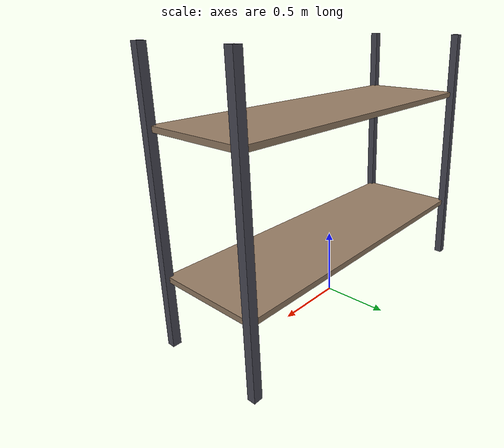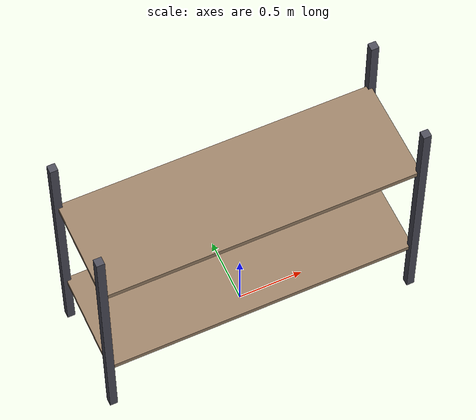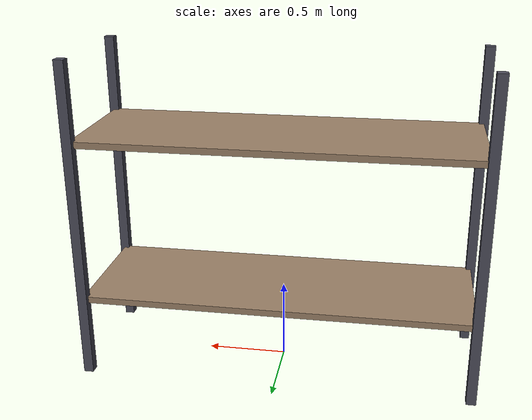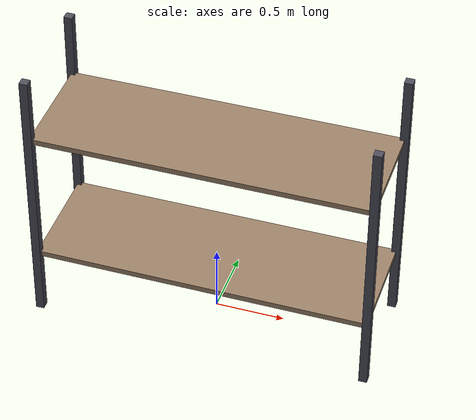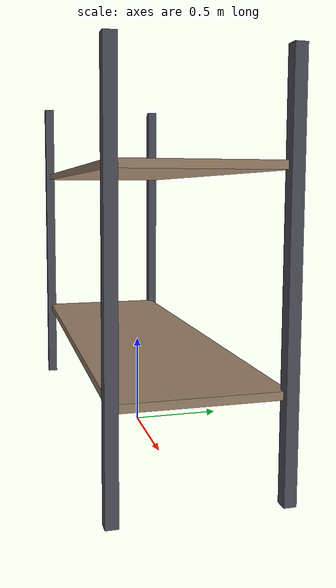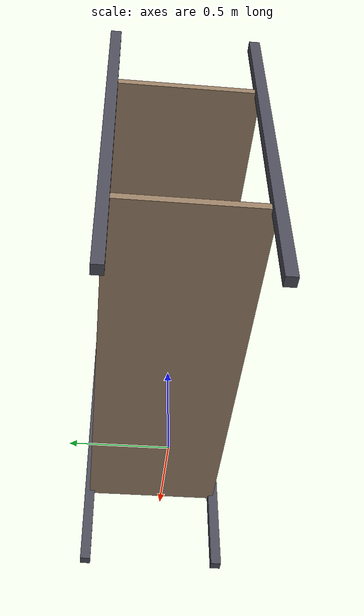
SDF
<?xml version="1.0"?>
<sdf version="1.6">
  <model name="overrack_shelf">
    <static>true</static>
    <!-- Dimensions: width 2.4m, depth 0.8m, height 2.0m -->
    <link name="frame">
      <!-- Four support posts -->
      <visual name="post_fl">
        <pose>-1.2 -0.4 1.0 0 0 0</pose>
        <geometry><box><size>0.06 0.06 2.0</size></box></geometry>
        <material><ambient>0.3 0.3 0.35 1</ambient><diffuse>0.3 0.3 0.35 1</diffuse></material>
      </visual>
      <collision name="post_fl_c">
        <pose>-1.2 -0.4 1.0 0 0 0</pose>
        <geometry><box><size>0.06 0.06 2.0</size></box></geometry>
      </collision>

      <visual name="post_fr">
        <pose>1.2 -0.4 1.0 0 0 0</pose>
        <geometry><box><size>0.06 0.06 2.0</size></box></geometry>
        <material><ambient>0.3 0.3 0.35 1</ambient><diffuse>0.3 0.3 0.35 1</diffuse></material>
      </visual>
      <collision name="post_fr_c">
        <pose>1.2 -0.4 1.0 0 0 0</pose>
        <geometry><box><size>0.06 0.06 2.0</size></box></geometry>
      </collision>

      <visual name="post_rl">
        <pose>-1.2 0.4 1.0 0 0 0</pose>
        <geometry><box><size>0.06 0.06 2.0</size></box></geometry>
        <material><ambient>0.3 0.3 0.35 1</ambient><diffuse>0.3 0.3 0.35 1</diffuse></material>
      </visual>
      <collision name="post_rl_c">
        <pose>-1.2 0.4 1.0 0 0 0</pose>
        <geometry><box><size>0.06 0.06 2.0</size></box></geometry>
      </collision>

      <visual name="post_rr">
        <pose>1.2 0.4 1.0 0 0 0</pose>
        <geometry><box><size>0.06 0.06 2.0</size></box></geometry>
        <material><ambient>0.3 0.3 0.35 1</ambient><diffuse>0.3 0.3 0.35 1</diffuse></material>
      </visual>
      <collision name="post_rr_c">
        <pose>1.2 0.4 1.0 0 0 0</pose>
        <geometry><box><size>0.06 0.06 2.0</size></box></geometry>
      </collision>

      <!-- Shelves (boards) at 0.5m and 1.5m -->
      <visual name="shelf_low">
        <pose>0 0 0.5 0 0 0</pose>
        <geometry><box><size>2.4 0.8 0.04</size></box></geometry>
        <material><ambient>0.6 0.5 0.4 1</ambient><diffuse>0.6 0.5 0.4 1</diffuse></material>
      </visual>
      <collision name="shelf_low_c">
        <pose>0 0 0.5 0 0 0</pose>
        <geometry><box><size>2.4 0.8 0.04</size></box></geometry>
      </collision>

      <visual name="shelf_up">
        <pose>0 0 1.5 0 0 0</pose>
        <geometry><box><size>2.4 0.8 0.04</size></box></geometry>
        <material><ambient>0.6 0.5 0.4 1</ambient><diffuse>0.6 0.5 0.4 1</diffuse></material>
      </visual>
      <collision name="shelf_up_c">
        <pose>0 0 1.5 0 0 0</pose>
        <geometry><box><size>2.4 0.8 0.04</size></box></geometry>
      </collision>
    </link>
  </model>
</sdf>
